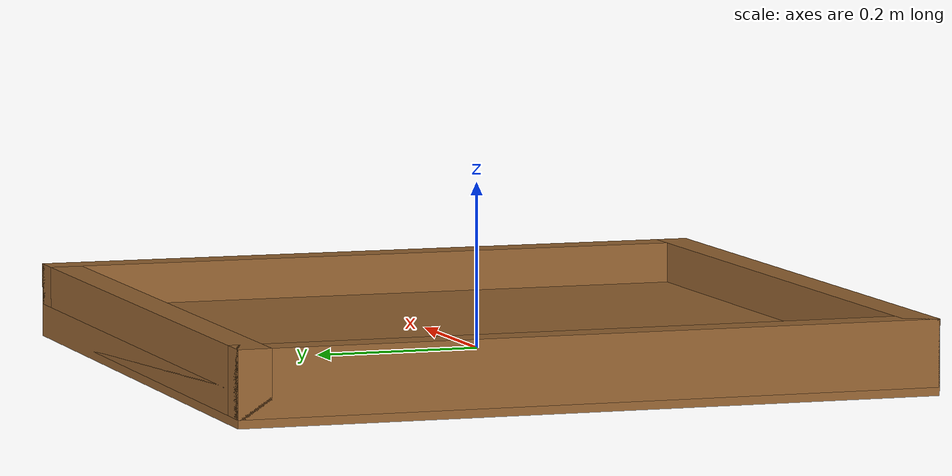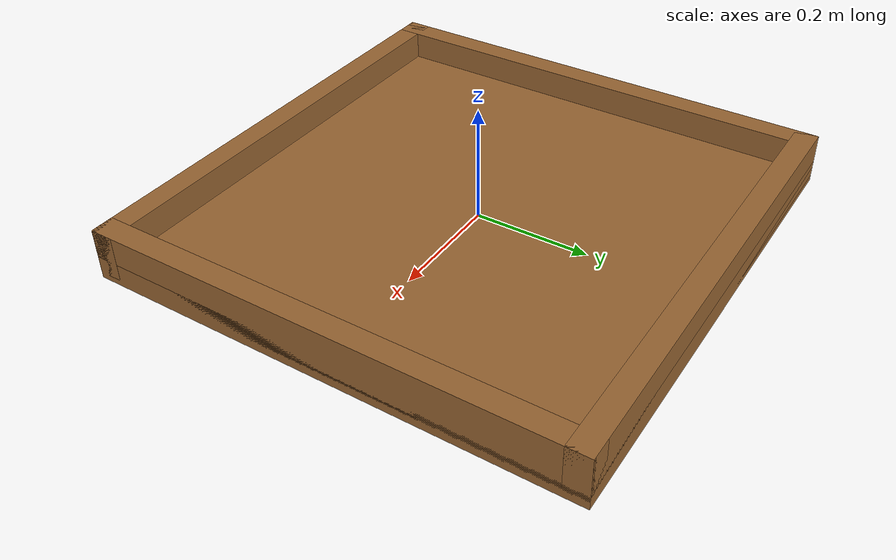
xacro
<robot name="box-setup"
    xmlns:xacro="https://www.ros.org/wiki/xacro">

    <xacro:include filename="$(find bobi_models)/urdf/utils/materials.xacro" />
    <xacro:include filename="$(find bobi_models)/urdf/utils/inertia.xacro" />

    <xacro:property name="border_thickness" value="0.04"/>
    <xacro:property name="setup_dim_x" value="0.81"/>
    <xacro:property name="setup_dim_y" value="0.81"/>
    <xacro:property name="setup_dim_z" value="0.04"/>
    <xacro:property name="box_mass" value="10"/>

    <link name="world"/>

    <joint name="world_joint" type="fixed">
        <parent link="world"/>
        <child link="setup"/>
    </joint>

    <link name="setup">
        <visual>
            <origin xyz="0 0 0"/>
            <geometry>
                <box size="${setup_dim_x + border_thickness} ${setup_dim_y + border_thickness} ${border_thickness}"/>
            </geometry>
            <material name="brown"/>
        </visual>
        <collision>
            <origin xyz="0 0 0"/>
            <geometry>
                <box size="${setup_dim_x + border_thickness} ${setup_dim_y + border_thickness} ${border_thickness}"/>
            </geometry>
        </collision>

        <visual>
            <origin xyz="0 -${(setup_dim_y)/2} ${setup_dim_z - border_thickness/4}"/>
            <geometry>
                <box size="${setup_dim_x + border_thickness} ${border_thickness} ${setup_dim_z + border_thickness}"/>
            </geometry>
            <material name="brown"/>
        </visual>
        <collision>
            <origin xyz="0 -${(setup_dim_y)/2} ${setup_dim_z - border_thickness/4}"/>
            <geometry>
                <box size="${setup_dim_x + border_thickness} ${border_thickness} ${setup_dim_z + border_thickness}"/>
            </geometry>
        </collision>

        <visual>
            <origin xyz="0 ${(setup_dim_y)/2} ${setup_dim_z - border_thickness/4}"/>
            <geometry>
                <box size="${setup_dim_x + border_thickness} ${border_thickness} ${setup_dim_z + border_thickness}"/>
            </geometry>
            <material name="brown"/>
        </visual>
        <collision>
            <origin xyz="0 ${(setup_dim_y)/2} ${setup_dim_z - border_thickness/4}"/>
            <geometry>
                <box size="${setup_dim_x + border_thickness} ${border_thickness} ${setup_dim_z + border_thickness}"/>
            </geometry>
        </collision>

        <visual>
            <origin xyz="${(setup_dim_x)/2} 0  ${setup_dim_z - border_thickness/4}"/>
            <geometry>
                <box size="${border_thickness} ${setup_dim_y + border_thickness} ${setup_dim_z + border_thickness}"/>
            </geometry>
            <material name="brown"/>
        </visual>
        <collision>
            <origin xyz="${(setup_dim_x)/2} 0  ${setup_dim_z - border_thickness/4}"/>
            <geometry>
                <box size="${border_thickness} ${setup_dim_y + border_thickness} ${setup_dim_z + border_thickness}"/>
            </geometry>
        </collision>

        <visual>
            <origin xyz="-${(setup_dim_x)/2} 0  ${setup_dim_z - border_thickness/4}"/>
            <geometry>
                <box size="${border_thickness} ${setup_dim_y + border_thickness} ${setup_dim_z + border_thickness}"/>
            </geometry>
            <material name="brown"/>
        </visual>
        <collision>
            <origin xyz="-${(setup_dim_x)/2} 0  ${setup_dim_z - border_thickness/4}"/>
            <geometry>
                <box size="${border_thickness} ${setup_dim_y + border_thickness} ${setup_dim_z + border_thickness}"/>
            </geometry>
        </collision>

        <inertial>
            <mass value="${box_mass}"/>
            <xacro:box_inertia mass="${box_mass}" x="${setup_dim_x + border_thickness}" y="${setup_dim_y + border_thickness}" z="${border_thickness}" />
        </inertial>
    </link>

    <gazebo reference="setup">
        <material>Gazebo/DarkGrey</material>
    </gazebo>
</robot>

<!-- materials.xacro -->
<robot>
	<material name="white">
		<color rgba="1 1 1 1" />
	</material>
	<material name="black">
		<color rgba="0 0 0 1" />
	</material>
	<material name="blue">
		<color rgba="0 0 0.8 1" />
	</material>
	<material name="yellow">
		<color rgba="1 1 0 1" />
	</material>
	<material name="green">
		<color rgba="0 1 0 1" />
	</material>
	<material name="brown">
		<color rgba="${153/255} ${102/255} ${51/255} 1.0"/>
	</material>
</robot>
